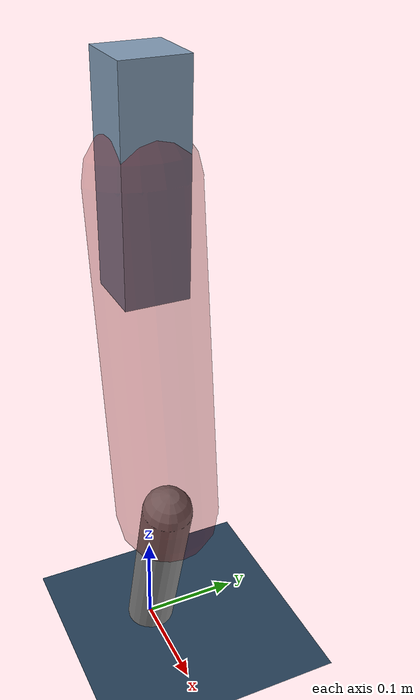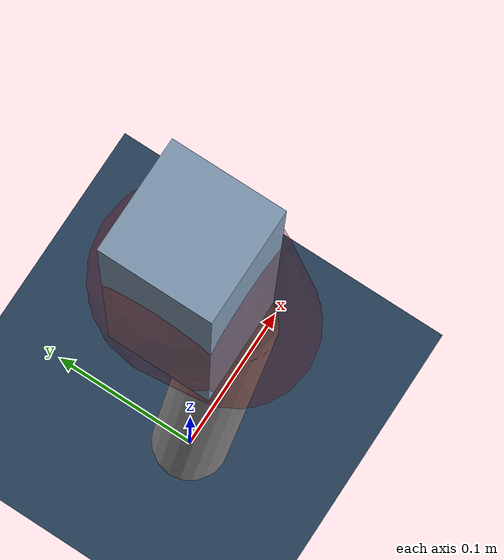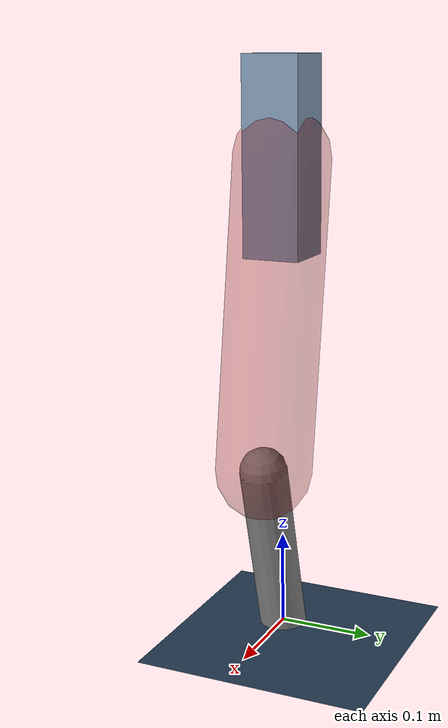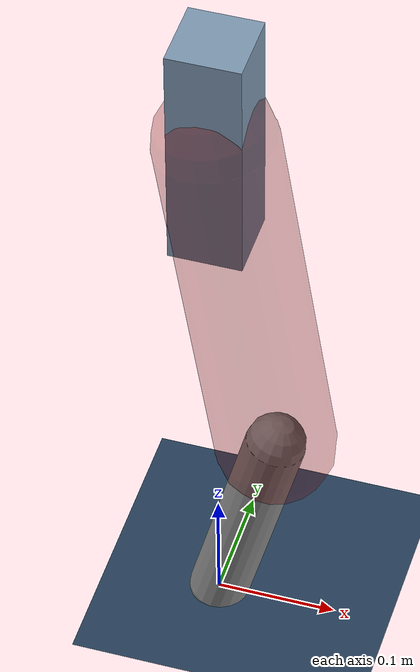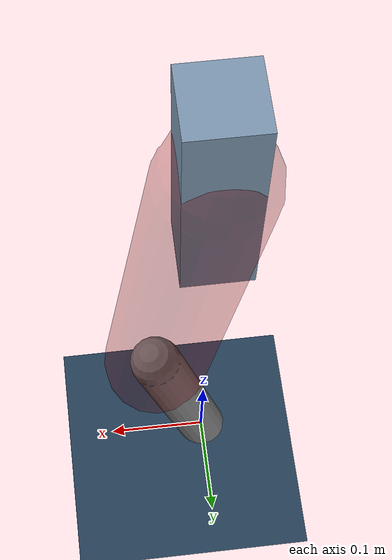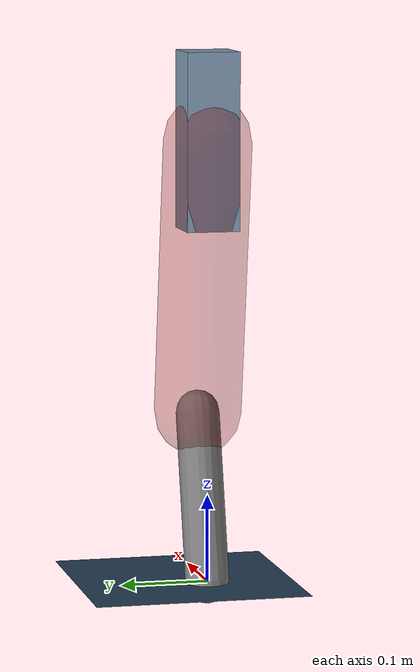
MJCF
<mujoco model="Hopper2D">
	<compiler inertiafromgeom="true" angle="radian" />
	<option timestep="0.001" integrator="implicit" cone="elliptic" solver="Newton" tolerance="1e-10" />

	<default>
		<geom contype="1" conaffinity="1" condim="3" friction="2 0.005 0.0001" solref="0.005 1" />
		<joint limited="true" damping="0.1" />
	</default>

	<asset>
		<texture name="skybox" type="skybox" builtin="gradient" rgb1=".4 .6 .8" rgb2="0 0 0" width="800" height="800" />
		<texture name="grid" type="2d" builtin="checker" rgb1=".1 .2 .3" rgb2=".2 .3 .4" width="300" height="300" mark="edge" markrgb=".2 .3 .4" />
		<material name="ground" texture="grid" texrepeat="1 1" texuniform="true" reflectance="0.1" />
		<material name="leg" rgba="0.5 0.6 0.7 1" />
	</asset>

	<worldbody>

		<geom name="floor" type="plane" size="5 5 0.25" material="ground" />

		<light directional="false" diffuse="0.8 0.8 0.8" specular="0.3 0.3 0.3" pos="0 0 2" dir="0 0 -1" />
		<light mode="targetbodycom" target="base" directional="false" diffuse="0.8 0.8 0.8" specular="0.3 0.3 0.3" pos="0 0 2" dir="0 0 -1" />

		<camera name="fixed" pos="0 -2 1" xyaxes="1 0 0 0 0 1" />
		<camera name="tracking" mode="trackcom" pos="0 -3 1" />

		<body name="root" pos="0 0 0.5037500830582623">
			<joint name="slide_x" type="slide" axis="1 0 0" range="-100 100" />
			<joint name="slide_z" type="slide" axis="0 0 1" range="0 10" />

			<body name="base" pos="0 0 0">
				<geom name="torso" type="box" size="0.03 0.03 0.1" mass="3.3049999999999997" material="leg" />

				<body name="link1" pos="0 0 0" euler="0 1.4171425664560477 0">
					<joint type="hinge" axis="0 -1 0" pos="0 0 0" name="hinge1" limited="true" range="-3.14 3.14" stiffness="0" damping="0.1" />
					<geom name="thigh" type="capsule" fromto="0 0 0 0.31926686676420984 0 0" size="0.05" rgba="0.5 0 0 0.3" mass="1.0412205402633665" />

					<body name="link2" pos="0.31926686676420984 0 0" euler="0 0.40762438089987163 0">
						<joint type="hinge" axis="0 -1 0" pos="0 0 0" name="hinge2" limited="true" range="-3.14 3.14" stiffness="0" damping="0.1" />
						<geom name="shank" type="capsule" fromto="0 0 0 0.19448321629405246 0 0" size="0.025" mass="0.3962348946646472" />

					</body>
				</body>
			</body>
		</body>
	</worldbody>

	<actuator>
		<motor name="torque1" joint="hinge1" ctrlrange="-163.1983476403787 163.1983476403787" ctrllimited="true" gear="1" />
		<motor name="torque2" joint="hinge2" ctrlrange="-110.01949667345347 110.01949667345347" ctrllimited="true" gear="1" />
	</actuator>
</mujoco>
